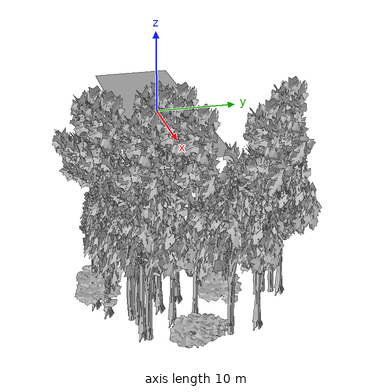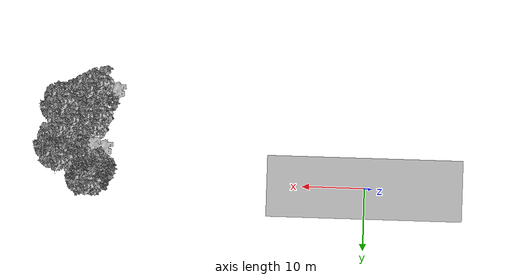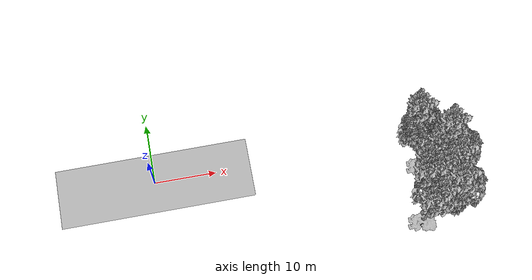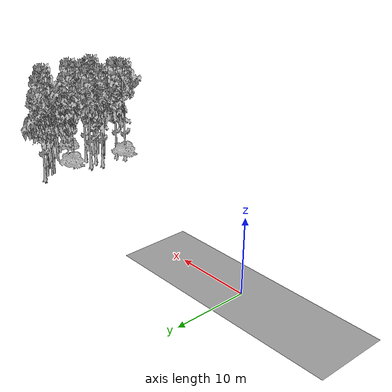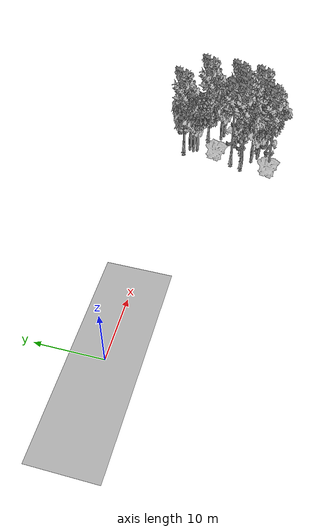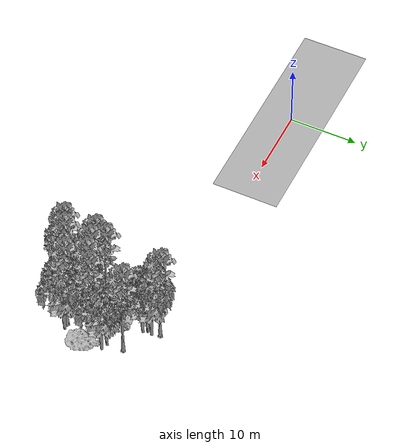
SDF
<sdf version="1.7">
 <world name="default">
  <model name="ground_plane">
   <static>1</static>
   <link name="link">
    <collision name="collision">
     <pose>-50 0 0 0 -0 0</pose>
     <geometry><plane><normal>0 0 1</normal><size>100 100</size></plane></geometry>
     <surface><contact><ode><min_depth>0.01</min_depth><max_vel>0</max_vel></ode></contact></surface>
    </collision>
    <visual name="grass">
     <cast_shadows>0</cast_shadows>
     <geometry>
      <mesh>
       <scale>0.5814285714285714 0.18142857142857144 0.1</scale>
       <uri>file://grass_plane/meshes/grass_plane.dae</uri>
      </mesh>
     </geometry>
    </visual>
   </link>
  </model>
  <model name="Tree 28">
   <static>1</static>
   <pose>47.11242717140746 -11.686590214693581 0 1.57079 -0 0</pose>
   <link name="link">
    <collision name="collision">
     <geometry><mesh><scale>3.5 5 3.5</scale><uri>model://tree_2/meshes/tree_2.obj</uri></mesh></geometry>
    </collision>
    <visual name="visual">
     <geometry><mesh><scale>3.5 5 3.5</scale><uri>model://tree_2/meshes/tree_2.obj</uri></mesh></geometry>
    </visual>
   </link>
  </model>
  <model name="Tree 117">
   <static>1</static>
   <pose>42.71905393366397 -5.556024605455804 0 1.57079 -0 0</pose>
   <link name="link">
    <collision name="collision">
     <geometry><mesh><scale>3 2 3</scale><uri>model://tree_3/meshes/tree_3.obj</uri></mesh></geometry>
    </collision>
    <visual name="visual">
     <geometry><mesh><scale>3 2 3</scale><uri>model://tree_3/meshes/tree_3.obj</uri></mesh></geometry>
    </visual>
   </link>
  </model>
  <model name="Tree 145">
   <static>1</static>
   <pose>47.029507015528154 -5.406966407888502 0 1.57079 -0 0</pose>
   <link name="link">
    <collision name="collision">
     <geometry><mesh><scale>3.5 5 3.5</scale><uri>model://tree_2/meshes/tree_2.obj</uri></mesh></geometry>
    </collision>
    <visual name="visual">
     <geometry><mesh><scale>3.5 5 3.5</scale><uri>model://tree_2/meshes/tree_2.obj</uri></mesh></geometry>
    </visual>
   </link>
  </model>
  <model name="Tree 170">
   <static>1</static>
   <pose>46.59023489139912 -8.050694566971053 0 1.57079 -0 0</pose>
   <link name="link">
    <collision name="collision">
     <geometry><mesh><scale>3.5 5 3.5</scale><uri>model://tree_9/meshes/tree_9.obj</uri></mesh></geometry>
    </collision>
    <visual name="visual">
     <geometry><mesh><scale>3.5 5 3.5</scale><uri>model://tree_9/meshes/tree_9.obj</uri></mesh></geometry>
    </visual>
   </link>
  </model>
  <model name="Tree 178">
   <static>1</static>
   <pose>43.66409821982367 -12.375781247987323 0 1.57079 -0 0</pose>
   <link name="link">
    <collision name="collision">
     <geometry><mesh><scale>3.5 5 3.5</scale><uri>model://tree_2/meshes/tree_2.obj</uri></mesh></geometry>
    </collision>
    <visual name="visual">
     <geometry><mesh><scale>3.5 5 3.5</scale><uri>model://tree_2/meshes/tree_2.obj</uri></mesh></geometry>
    </visual>
   </link>
  </model>
  <model name="Tree 223">
   <static>1</static>
   <pose>40.9033094482367 -14.63225013678687 0 1.57079 -0 0</pose>
   <link name="link">
    <collision name="collision">
     <geometry><mesh><scale>3.5 5 3.5</scale><uri>model://tree_9/meshes/tree_9.obj</uri></mesh></geometry>
    </collision>
    <visual name="visual">
     <geometry><mesh><scale>3.5 5 3.5</scale><uri>model://tree_9/meshes/tree_9.obj</uri></mesh></geometry>
    </visual>
   </link>
  </model>
  <model name="Tree 241">
   <static>1</static>
   <pose>41.654274047542785 -8.215077856788154 0 1.57079 -0 0</pose>
   <link name="link">
    <collision name="collision">
     <geometry><mesh><scale>3.5 5 3.5</scale><uri>model://tree_9/meshes/tree_9.obj</uri></mesh></geometry>
    </collision>
    <visual name="visual">
     <geometry><mesh><scale>3.5 5 3.5</scale><uri>model://tree_9/meshes/tree_9.obj</uri></mesh></geometry>
    </visual>
   </link>
  </model>
  <model name="Tree 254">
   <static>1</static>
   <pose>43.05225127101811 -2.0673521782474307 0 1.57079 -0 0</pose>
   <link name="link">
    <collision name="collision">
     <geometry><mesh><scale>3.5 5 3.5</scale><uri>model://tree_2/meshes/tree_2.obj</uri></mesh></geometry>
    </collision>
    <visual name="visual">
     <geometry><mesh><scale>3.5 5 3.5</scale><uri>model://tree_2/meshes/tree_2.obj</uri></mesh></geometry>
    </visual>
   </link>
  </model>
  <model name="Tree 270">
   <static>1</static>
   <pose>44.24258908737478 -12.429635227666632 0 1.57079 -0 0</pose>
   <link name="link">
    <collision name="collision">
     <geometry><mesh><scale>3.5 5 3.5</scale><uri>model://tree_2/meshes/tree_2.obj</uri></mesh></geometry>
    </collision>
    <visual name="visual">
     <geometry><mesh><scale>3.5 5 3.5</scale><uri>model://tree_2/meshes/tree_2.obj</uri></mesh></geometry>
    </visual>
   </link>
  </model>
  <model name="Tree 280">
   <static>1</static>
   <pose>42.75729637267881 -1.4835622846595626 0 1.57079 -0 0</pose>
   <link name="link">
    <collision name="collision">
     <geometry><mesh><scale>3.5 5 3.5</scale><uri>model://tree_2/meshes/tree_2.obj</uri></mesh></geometry>
    </collision>
    <visual name="visual">
     <geometry><mesh><scale>3.5 5 3.5</scale><uri>model://tree_2/meshes/tree_2.obj</uri></mesh></geometry>
    </visual>
   </link>
  </model>
  <model name="Tree 302">
   <static>1</static>
   <pose>40.877530363933744 -14.757851707746283 0 1.57079 -0 0</pose>
   <link name="link">
    <collision name="collision">
     <geometry><mesh><scale>3 2 3</scale><uri>model://tree_3/meshes/tree_3.obj</uri></mesh></geometry>
    </collision>
    <visual name="visual">
     <geometry><mesh><scale>3 2 3</scale><uri>model://tree_3/meshes/tree_3.obj</uri></mesh></geometry>
    </visual>
   </link>
  </model>
  <model name="Tree 324">
   <static>1</static>
   <pose>40.93944652547576 -10.01777046709404 0 1.57079 -0 0</pose>
   <link name="link">
    <collision name="collision">
     <geometry><mesh><scale>3.5 5 3.5</scale><uri>model://tree_9/meshes/tree_9.obj</uri></mesh></geometry>
    </collision>
    <visual name="visual">
     <geometry><mesh><scale>3.5 5 3.5</scale><uri>model://tree_9/meshes/tree_9.obj</uri></mesh></geometry>
    </visual>
   </link>
  </model>
  <model name="Tree 328">
   <static>1</static>
   <pose>44.709968861807 -9.32599944749547 0 1.57079 -0 0</pose>
   <link name="link">
    <collision name="collision">
     <geometry><mesh><scale>3.5 5 3.5</scale><uri>model://tree_9/meshes/tree_9.obj</uri></mesh></geometry>
    </collision>
    <visual name="visual">
     <geometry><mesh><scale>3.5 5 3.5</scale><uri>model://tree_9/meshes/tree_9.obj</uri></mesh></geometry>
    </visual>
   </link>
  </model>
  <model name="Tree 333">
   <static>1</static>
   <pose>46.01268782713301 -11.93445329110153 0 1.57079 -0 0</pose>
   <link name="link">
    <collision name="collision">
     <geometry><mesh><scale>3.5 5 3.5</scale><uri>model://tree_9/meshes/tree_9.obj</uri></mesh></geometry>
    </collision>
    <visual name="visual">
     <geometry><mesh><scale>3.5 5 3.5</scale><uri>model://tree_9/meshes/tree_9.obj</uri></mesh></geometry>
    </visual>
   </link>
  </model>
  <model name="Tree 399">
   <static>1</static>
   <pose>46.68620867677389 -3.199558744454098 0 1.57079 -0 0</pose>
   <link name="link">
    <collision name="collision">
     <geometry><mesh><scale>3.5 5 3.5</scale><uri>model://tree_9/meshes/tree_9.obj</uri></mesh></geometry>
    </collision>
    <visual name="visual">
     <geometry><mesh><scale>3.5 5 3.5</scale><uri>model://tree_9/meshes/tree_9.obj</uri></mesh></geometry>
    </visual>
   </link>
  </model>
  <model name="Tree 410">
   <static>1</static>
   <pose>42.35458248856931 0.13958791127906522 0 1.57079 -0 0</pose>
   <link name="link">
    <collision name="collision">
     <geometry><mesh><scale>3.5 5 3.5</scale><uri>model://tree_9/meshes/tree_9.obj</uri></mesh></geometry>
    </collision>
    <visual name="visual">
     <geometry><mesh><scale>3.5 5 3.5</scale><uri>model://tree_9/meshes/tree_9.obj</uri></mesh></geometry>
    </visual>
   </link>
  </model>
  <model name="Tree 416">
   <static>1</static>
   <pose>48.61040406076765 -8.393049998357636 0 1.57079 -0 0</pose>
   <link name="link">
    <collision name="collision">
     <geometry><mesh><scale>4 2.5 4</scale><uri>model://tree_1/meshes/tree_1.obj</uri></mesh></geometry>
    </collision>
    <visual name="visual">
     <geometry><mesh><scale>4 2.5 4</scale><uri>model://tree_1/meshes/tree_1.obj</uri></mesh></geometry>
    </visual>
   </link>
  </model>
  <model name="Tree 455">
   <static>1</static>
   <pose>42.5985135867254 -11.523051166385425 0 1.57079 -0 0</pose>
   <link name="link">
    <collision name="collision">
     <geometry><mesh><scale>3.5 5 3.5</scale><uri>model://tree_2/meshes/tree_2.obj</uri></mesh></geometry>
    </collision>
    <visual name="visual">
     <geometry><mesh><scale>3.5 5 3.5</scale><uri>model://tree_2/meshes/tree_2.obj</uri></mesh></geometry>
    </visual>
   </link>
  </model>
  <model name="Tree 462">
   <static>1</static>
   <pose>47.93308847168876 -5.7245126293048045 0 1.57079 -0 0</pose>
   <link name="link">
    <collision name="collision">
     <geometry><mesh><scale>3.5 5 3.5</scale><uri>model://tree_2/meshes/tree_2.obj</uri></mesh></geometry>
    </collision>
    <visual name="visual">
     <geometry><mesh><scale>3.5 5 3.5</scale><uri>model://tree_2/meshes/tree_2.obj</uri></mesh></geometry>
    </visual>
   </link>
  </model>
  <model name="Tree 471">
   <static>1</static>
   <pose>44.960139746839616 -12.046037522592432 0 1.57079 -0 0</pose>
   <link name="link">
    <collision name="collision">
     <geometry><mesh><scale>3.5 5 3.5</scale><uri>model://tree_2/meshes/tree_2.obj</uri></mesh></geometry>
    </collision>
    <visual name="visual">
     <geometry><mesh><scale>3.5 5 3.5</scale><uri>model://tree_2/meshes/tree_2.obj</uri></mesh></geometry>
    </visual>
   </link>
  </model>
  <model name="Tree 482">
   <static>1</static>
   <pose>42.97703408956872 -0.8253788487642115 0 1.57079 -0 0</pose>
   <link name="link">
    <collision name="collision">
     <geometry><mesh><scale>3.5 5 3.5</scale><uri>model://tree_2/meshes/tree_2.obj</uri></mesh></geometry>
    </collision>
    <visual name="visual">
     <geometry><mesh><scale>3.5 5 3.5</scale><uri>model://tree_2/meshes/tree_2.obj</uri></mesh></geometry>
    </visual>
   </link>
  </model>
  <model name="Tree 497">
   <static>1</static>
   <pose>42.672527570553655 -9.8821163203462 0 1.57079 -0 0</pose>
   <link name="link">
    <collision name="collision">
     <geometry><mesh><scale>3.5 5 3.5</scale><uri>model://tree_9/meshes/tree_9.obj</uri></mesh></geometry>
    </collision>
    <visual name="visual">
     <geometry><mesh><scale>3.5 5 3.5</scale><uri>model://tree_9/meshes/tree_9.obj</uri></mesh></geometry>
    </visual>
   </link>
  </model>
  <model name="Tree 507">
   <static>1</static>
   <pose>42.30107958939381 -13.882756679112621 0 1.57079 -0 0</pose>
   <link name="link">
    <collision name="collision">
     <geometry><mesh><scale>3.5 5 3.5</scale><uri>model://tree_9/meshes/tree_9.obj</uri></mesh></geometry>
    </collision>
    <visual name="visual">
     <geometry><mesh><scale>3.5 5 3.5</scale><uri>model://tree_9/meshes/tree_9.obj</uri></mesh></geometry>
    </visual>
   </link>
  </model>
 </world>
</sdf>
